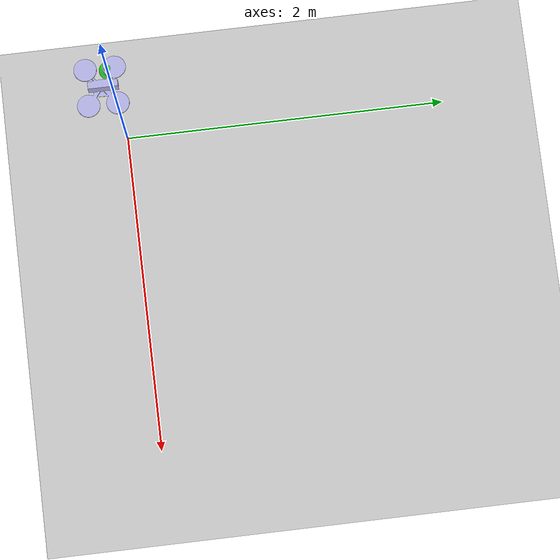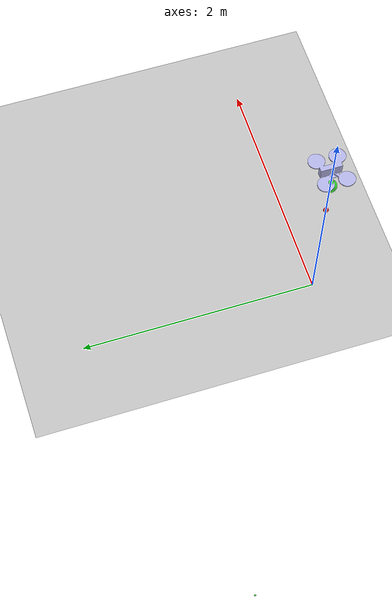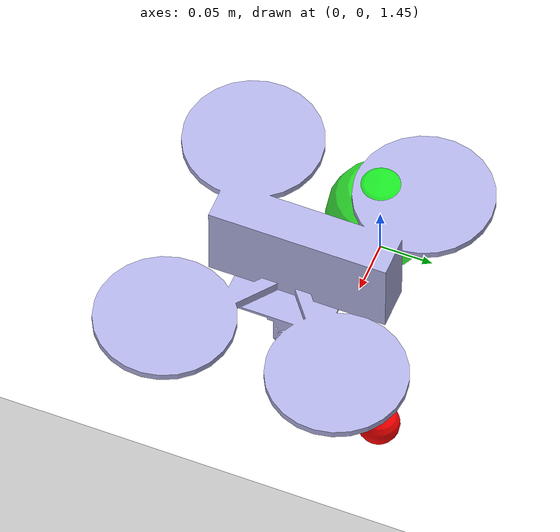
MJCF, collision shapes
<mujoco model="drone_arm_system">
        <compiler angle="radian" meshdir="." />
        <option timestep="0.001" gravity="0 0 -9.81" integrator="RK4"/>

        <asset>
            <mesh name="base_link" file="base_link.STL"/>
            <mesh name="Link_1" file="Link_1.STL"/>
            <mesh name="Link_2" file="Link_2.STL"/>
        </asset>

        <actuator>
            <!-- 机械臂关节控制 -->
            <motor joint="Joint_1" name="act1" gear="1" ctrlrange="-6 6"/>
            <motor joint="Joint_2" name="act2" gear="1" ctrlrange="-4 4"/>
        </actuator>

        <worldbody>
            <!-- base_link作为无人机本体 -->
            <body name="base_link" pos="0 0 1.5">
                <freejoint name="drone_free_joint"/>

                <!-- 惯性参数 -->
                <inertial mass="1.0"
                         pos="1.928E-06 0.0086666 0.027403"
                         diaginertia="0.00409 0.0055803 0.0094981"/>

                <!-- 机身几何体 -->
                <geom type="mesh" mesh="base_link" rgba="0.7 0.7 0.9 1"/>

                <!-- 可视化推力箭头位置 -->
                <site name="thrust_point" pos="0 0 0" size="0.02" rgba="0 1 1 0.8" type="sphere"/>

                <!-- 机械臂连接 -->
                <body name="Link_1" pos="0 -2.5e-05 -0.038">
                    <inertial pos="-0.0016184 -7.0854E-06 -0.08892"
                             mass="0.08"
                             diaginertia="1.7491E-05 2.2905E-05 1.2e-5"/>
                    <joint name="Joint_1" pos="0 0 0" axis="1 0 0"
                          range="-1.6 1.6" damping="0.372" frictionloss="0.08"/>
                    <geom contype="0" conaffinity="0" type="mesh" mesh="Link_1" rgba="1 0.95 0.9 1"/>

                    <body name="Link_2" pos="0 0 -0.1308" quat="0 -1 0 0">
                        <inertial pos="-0.00195 0 0.079412"
                                 mass="0.105"
                                 diaginertia="4e-5 4.16e-5 2.8e-5"/>
                        <joint name="Joint_2" pos="0 0 0" axis="1 0 0"
                              range="-1.6 1.6" damping="0.235" frictionloss="0.203"/>
                        <geom contype="0" conaffinity="0" type="mesh" mesh="Link_2" rgba="1 1 1 1"/>

                        <!-- 末端执行器标记 -->
                        <site name="end_effector" pos="0 0 0.16" size="0.02" rgba="1 0 0 1"/>
                    </body>
                </body>
            </body>

            <!-- 地面 -->
            <geom name="ground" type="plane" size="10 10 0.1" rgba="0.3 0.3 0.3 1"/>

            <!-- 当前目标位置标记（大绿球） -->
            <body name="current_target" pos="0 0 1.5" mocap="true">
                <geom type="sphere" size="0.05" rgba="0 1 0 0.8" contype="0" conaffinity="0"/>
            </body>

            <!-- 路径点标记（小球） -->
            <body name="waypoint_0" pos="0 0 1.5" mocap="true">
                <geom type="sphere" size="0.02" rgba="0.5 0.5 1 0.5" contype="0" conaffinity="0"/>
            </body>
            <body name="waypoint_1" pos="0 0 1.5" mocap="true">
                <geom type="sphere" size="0.02" rgba="0.5 0.5 1 0.5" contype="0" conaffinity="0"/>
            </body>
            <body name="waypoint_2" pos="0 0 1.5" mocap="true">
                <geom type="sphere" size="0.02" rgba="0.5 0.5 1 0.5" contype="0" conaffinity="0"/>
            </body>
            <body name="waypoint_3" pos="0 0 1.5" mocap="true">
                <geom type="sphere" size="0.02" rgba="0.5 0.5 1 0.5" contype="0" conaffinity="0"/>
            </body>
            <body name="waypoint_4" pos="0 0 1.5" mocap="true">
                <geom type="sphere" size="0.02" rgba="0.5 0.5 1 0.5" contype="0" conaffinity="0"/>
            </body>
            <body name="waypoint_5" pos="0 0 1.5" mocap="true">
                <geom type="sphere" size="0.02" rgba="0.5 0.5 1 0.5" contype="0" conaffinity="0"/>
            </body>
            <body name="waypoint_6" pos="0 0 1.5" mocap="true">
                <geom type="sphere" size="0.02" rgba="0.5 0.5 1 0.5" contype="0" conaffinity="0"/>
            </body>
            <body name="waypoint_7" pos="0 0 1.5" mocap="true">
                <geom type="sphere" size="0.02" rgba="0.5 0.5 1 0.5" contype="0" conaffinity="0"/>
            </body>
            <body name="waypoint_8" pos="0 0 1.5" mocap="true">
                <geom type="sphere" size="0.02" rgba="0.5 0.5 1 0.5" contype="0" conaffinity="0"/>
            </body>
            <body name="waypoint_9" pos="0 0 1.5" mocap="true">
                <geom type="sphere" size="0.02" rgba="0.5 0.5 1 0.5" contype="0" conaffinity="0"/>
            </body>

            <!-- 已到达路径点标记（用于显示已经通过的点） -->
            <body name="reached_0" pos="0 0 -10" mocap="true">
                <geom type="sphere" size="0.015" rgba="0 0.8 0 0.7" contype="0" conaffinity="0"/>
            </body>
            <body name="reached_1" pos="0 0 -10" mocap="true">
                <geom type="sphere" size="0.015" rgba="0 0.8 0 0.7" contype="0" conaffinity="0"/>
            </body>
            <body name="reached_2" pos="0 0 -10" mocap="true">
                <geom type="sphere" size="0.015" rgba="0 0.8 0 0.7" contype="0" conaffinity="0"/>
            </body>
            <body name="reached_3" pos="0 0 -10" mocap="true">
                <geom type="sphere" size="0.015" rgba="0 0.8 0 0.7" contype="0" conaffinity="0"/>
            </body>
            <body name="reached_4" pos="0 0 -10" mocap="true">
                <geom type="sphere" size="0.015" rgba="0 0.8 0 0.7" contype="0" conaffinity="0"/>
            </body>
            <body name="reached_5" pos="0 0 -10" mocap="true">
                <geom type="sphere" size="0.015" rgba="0 0.8 0 0.7" contype="0" conaffinity="0"/>
            </body>
            <body name="reached_6" pos="0 0 -10" mocap="true">
                <geom type="sphere" size="0.015" rgba="0 0.8 0 0.7" contype="0" conaffinity="0"/>
            </body>
            <body name="reached_7" pos="0 0 -10" mocap="true">
                <geom type="sphere" size="0.015" rgba="0 0.8 0 0.7" contype="0" conaffinity="0"/>
            </body>
            <body name="reached_8" pos="0 0 -10" mocap="true">
                <geom type="sphere" size="0.015" rgba="0 0.8 0 0.7" contype="0" conaffinity="0"/>
            </body>
            <body name="reached_9" pos="0 0 -10" mocap="true">
                <geom type="sphere" size="0.015" rgba="0 0.8 0 0.7" contype="0" conaffinity="0"/>
            </body>
        </worldbody>
    </mujoco>
